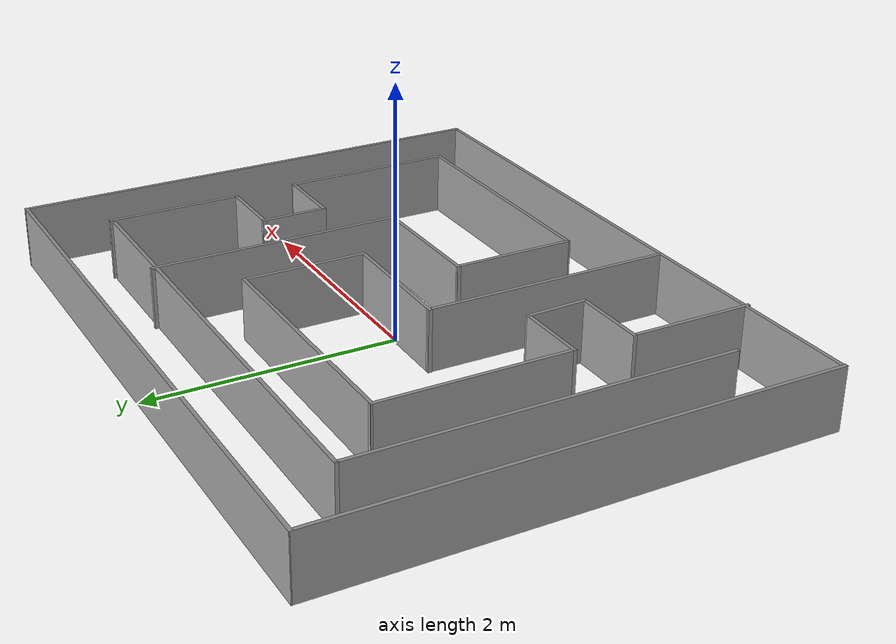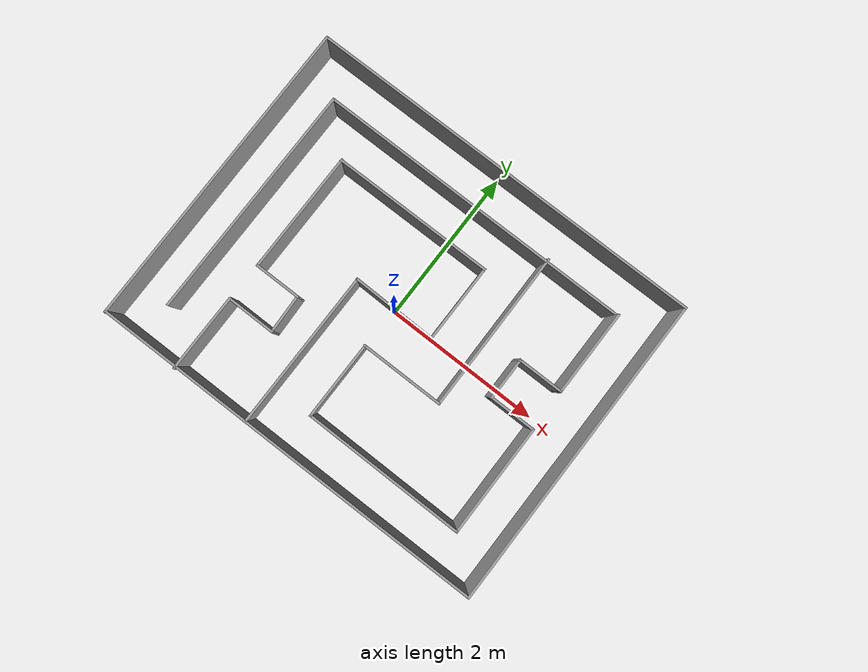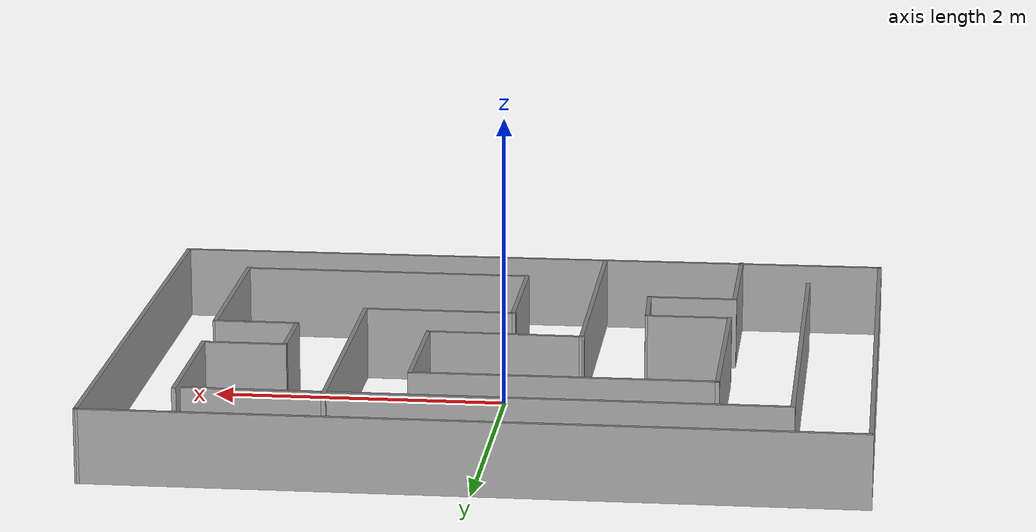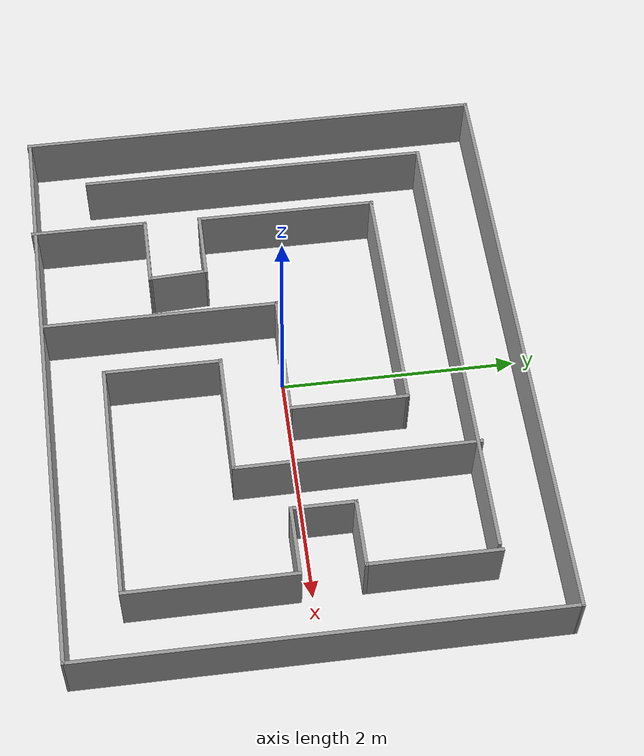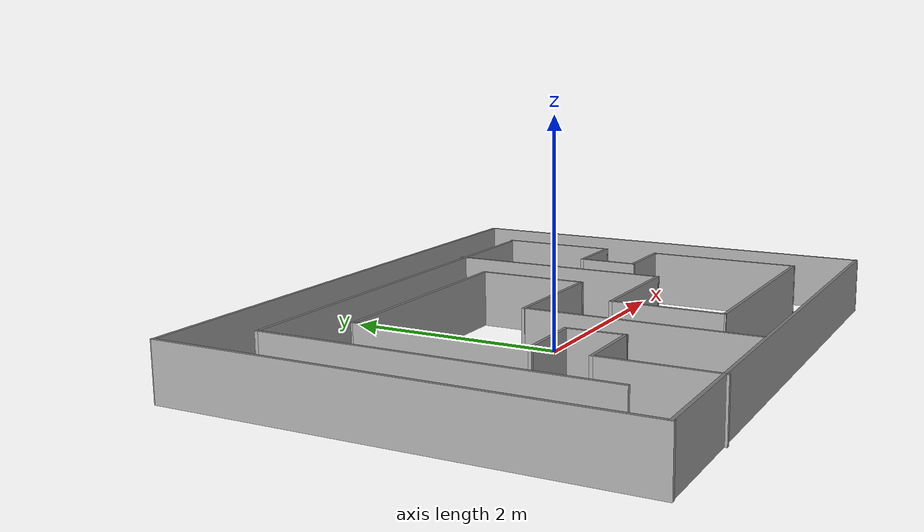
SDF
<?xml version='1.0'?>
<sdf version='1.7'>
  <model name='rk_square_v2'>
    <pose>0.007133 -0.001485 0 0 -0 0</pose>
    <link name='Wall_0'>
      <collision name='Wall_0_Collision'>
        <geometry>
          <box>
            <size>4.01302 0.03 0.5</size>
          </box>
        </geometry>
        <pose>0 0 0.25 0 -0 0</pose>
      </collision>
      <visual name='Wall_0_Visual'>
        <pose>0 0 0.25 0 -0 0</pose>
        <geometry>
          <box>
            <size>4.01302 0.03 0.5</size>
          </box>
        </geometry>
        <material>
          <script>
            <uri>file://media/materials/scripts/gazebo.material</uri>
            <name>Gazebo/Grey</name>
          </script>
          <ambient>1 1 1 1</ambient>
        </material>
        <meta>
          <layer>0</layer>
        </meta>
      </visual>
      <pose>-2.53339 -0.004576 0 0 -0 1.57406</pose>
    </link>
    <link name='Wall_10'>
      <collision name='Wall_10_Collision'>
        <geometry>
          <box>
            <size>4 0.03 0.5</size>
          </box>
        </geometry>
        <pose>0 0 0.25 0 -0 0</pose>
      </collision>
      <visual name='Wall_10_Visual'>
        <pose>0 0 0.25 0 -0 0</pose>
        <geometry>
          <box>
            <size>4 0.03 0.5</size>
          </box>
        </geometry>
        <material>
          <script>
            <uri>file://media/materials/scripts/gazebo.material</uri>
            <name>Gazebo/Grey</name>
          </script>
          <ambient>1 1 1 1</ambient>
        </material>
        <meta>
          <layer>0</layer>
        </meta>
      </visual>
      <pose>-0.043133 1.46849 0 0 -0 0</pose>
    </link>
    <link name='Wall_12'>
      <collision name='Wall_12_Collision'>
        <geometry>
          <box>
            <size>1.005 0.03 0.5</size>
          </box>
        </geometry>
        <pose>0 0 0.25 0 -0 0</pose>
      </collision>
      <visual name='Wall_12_Visual'>
        <pose>0 0 0.25 0 -0 0</pose>
        <geometry>
          <box>
            <size>1.005 0.03 0.5</size>
          </box>
        </geometry>
        <material>
          <script>
            <uri>file://media/materials/scripts/gazebo.material</uri>
            <name>Gazebo/Grey</name>
          </script>
          <ambient>1 1 1 1</ambient>
        </material>
        <meta>
          <layer>0</layer>
        </meta>
      </visual>
      <pose>-1.52613 -1.51702 0 0 -0 -1.5708</pose>
    </link>
    <link name='Wall_14'>
      <collision name='Wall_14_Collision'>
        <geometry>
          <box>
            <size>0.63 0.03 0.5</size>
          </box>
        </geometry>
        <pose>0 0 0.25 0 -0 0</pose>
      </collision>
      <visual name='Wall_14_Visual'>
        <pose>0 0 0.25 0 -0 0</pose>
        <geometry>
          <box>
            <size>0.63 0.03 0.5</size>
          </box>
        </geometry>
        <material>
          <script>
            <uri>file://media/materials/scripts/gazebo.material</uri>
            <name>Gazebo/Grey</name>
          </script>
          <ambient>1 1 1 1</ambient>
        </material>
        <meta>
          <layer>0</layer>
        </meta>
      </visual>
      <pose>-1.22613 -1.02951 0 0 -0 0</pose>
    </link>
    <link name='Wall_2'>
      <collision name='Wall_2_Collision'>
        <geometry>
          <box>
            <size>5.10976 0.03 0.5</size>
          </box>
        </geometry>
        <pose>0 0 0.25 0 -0 0</pose>
      </collision>
      <visual name='Wall_2_Visual'>
        <pose>0 0 0.25 0 -0 0</pose>
        <geometry>
          <box>
            <size>5.10976 0.03 0.5</size>
          </box>
        </geometry>
        <material>
          <script>
            <uri>file://media/materials/scripts/gazebo.material</uri>
            <name>Gazebo/Grey</name>
          </script>
          <ambient>1 1 1 1</ambient>
        </material>
        <meta>
          <layer>0</layer>
        </meta>
      </visual>
      <pose>-1e-05 1.99948 0 0 -0 0.001969</pose>
    </link>
    <link name='Wall_21'>
      <collision name='Wall_21_Collision'>
        <geometry>
          <box>
            <size>0.6 0.03 0.5</size>
          </box>
        </geometry>
        <pose>0 0 0.25 0 -0 0</pose>
      </collision>
      <visual name='Wall_21_Visual'>
        <pose>0 0 0.25 0 -0 0</pose>
        <geometry>
          <box>
            <size>0.6 0.03 0.5</size>
          </box>
        </geometry>
        <material>
          <script>
            <uri>file://media/materials/scripts/gazebo.material</uri>
            <name>Gazebo/Grey</name>
          </script>
          <ambient>1 1 1 1</ambient>
        </material>
        <meta>
          <layer>0</layer>
        </meta>
      </visual>
      <pose>-1.23097 -0.550446 0 0 -0 -0.000241</pose>
    </link>
    <link name='Wall_23'>
      <collision name='Wall_23_Collision'>
        <geometry>
          <box>
            <size>1.55255 0.03 0.5</size>
          </box>
        </geometry>
        <pose>0 0 0.25 0 -0 0</pose>
      </collision>
      <visual name='Wall_23_Visual'>
        <pose>0 0 0.25 0 -0 0</pose>
        <geometry>
          <box>
            <size>1.55255 0.03 0.5</size>
          </box>
        </geometry>
        <material>
          <script>
            <uri>file://media/materials/scripts/gazebo.material</uri>
            <name>Gazebo/Grey</name>
          </script>
          <ambient>1 1 1 1</ambient>
        </material>
        <meta>
          <layer>0</layer>
        </meta>
      </visual>
      <pose>-1.51597 0.210862 0 0 -0 1.57101</pose>
    </link>
    <link name='Wall_25'>
      <collision name='Wall_25_Collision'>
        <geometry>
          <box>
            <size>2.06053 0.03 0.5</size>
          </box>
        </geometry>
        <pose>0 0 0.25 0 -0 0</pose>
      </collision>
      <visual name='Wall_25_Visual'>
        <pose>0 0 0.25 0 -0 0</pose>
        <geometry>
          <box>
            <size>2.06053 0.03 0.5</size>
          </box>
        </geometry>
        <material>
          <script>
            <uri>file://media/materials/scripts/gazebo.material</uri>
            <name>Gazebo/Grey</name>
          </script>
          <ambient>1 1 1 1</ambient>
        </material>
        <meta>
          <layer>0</layer>
        </meta>
      </visual>
      <pose>-0.50087 0.970132 0 0 -0 0.002318</pose>
    </link>
    <link name='Wall_27'>
      <collision name='Wall_27_Collision'>
        <geometry>
          <box>
            <size>1 0.03 0.5</size>
          </box>
        </geometry>
        <pose>0 0 0.25 0 -0 0</pose>
      </collision>
      <visual name='Wall_27_Visual'>
        <pose>0 0 0.25 0 -0 0</pose>
        <geometry>
          <box>
            <size>1 0.03 0.5</size>
          </box>
        </geometry>
        <material>
          <script>
            <uri>file://media/materials/scripts/gazebo.material</uri>
            <name>Gazebo/Grey</name>
          </script>
          <ambient>1 1 1 1</ambient>
        </material>
        <meta>
          <layer>0</layer>
        </meta>
      </visual>
      <pose>0.51463 0.483324 0 0 -0 -1.57031</pose>
    </link>
    <link name='Wall_29'>
      <collision name='Wall_29_Collision'>
        <geometry>
          <box>
            <size>1.08735 0.03 0.5</size>
          </box>
        </geometry>
        <pose>0 0 0.25 0 -0 0</pose>
      </collision>
      <visual name='Wall_29_Visual'>
        <pose>0 0 0.25 0 -0 0</pose>
        <geometry>
          <box>
            <size>1.08735 0.03 0.5</size>
          </box>
        </geometry>
        <material>
          <script>
            <uri>file://media/materials/scripts/gazebo.material</uri>
            <name>Gazebo/Grey</name>
          </script>
          <ambient>1 1 1 1</ambient>
        </material>
        <meta>
          <layer>0</layer>
        </meta>
      </visual>
      <pose>-0.013754 0.005943 0 0 -0 3.12749</pose>
    </link>
    <link name='Wall_31'>
      <collision name='Wall_31_Collision'>
        <geometry>
          <box>
            <size>2 0.03 0.5</size>
          </box>
        </geometry>
        <pose>0 0 0.25 0 -0 0</pose>
      </collision>
      <visual name='Wall_31_Visual'>
        <pose>0 0 0.25 0 -0 0</pose>
        <geometry>
          <box>
            <size>2 0.03 0.5</size>
          </box>
        </geometry>
        <material>
          <script>
            <uri>file://media/materials/scripts/gazebo.material</uri>
            <name>Gazebo/Grey</name>
          </script>
          <ambient>1 1 1 1</ambient>
        </material>
        <meta>
          <layer>0</layer>
        </meta>
      </visual>
      <pose>-0.537403 -0.971599 0 0 -0 -1.5708</pose>
    </link>
    <link name='Wall_33'>
      <collision name='Wall_33_Collision'>
        <geometry>
          <box>
            <size>2.04475 0.03 0.5</size>
          </box>
        </geometry>
        <pose>0 0 0.25 0 -0 0</pose>
      </collision>
      <visual name='Wall_33_Visual'>
        <pose>0 0 0.25 0 -0 0</pose>
        <geometry>
          <box>
            <size>2.04475 0.03 0.5</size>
          </box>
        </geometry>
        <material>
          <script>
            <uri>file://media/materials/scripts/gazebo.material</uri>
            <name>Gazebo/Grey</name>
          </script>
          <ambient>1 1 1 1</ambient>
        </material>
        <meta>
          <layer>0</layer>
        </meta>
      </visual>
      <pose>1.01684 0.489112 0 0 -0 -1.56586</pose>
    </link>
    <link name='Wall_35'>
      <collision name='Wall_35_Collision'>
        <geometry>
          <box>
            <size>1.06461 0.03 0.5</size>
          </box>
        </geometry>
        <pose>0 0 0.25 0 -0 0</pose>
      </collision>
      <visual name='Wall_35_Visual'>
        <pose>0 0 0.25 0 -0 0</pose>
        <geometry>
          <box>
            <size>1.06461 0.03 0.5</size>
          </box>
        </geometry>
        <material>
          <script>
            <uri>file://media/materials/scripts/gazebo.material</uri>
            <name>Gazebo/Grey</name>
          </script>
          <ambient>1 1 1 1</ambient>
        </material>
        <meta>
          <layer>0</layer>
        </meta>
      </visual>
      <pose>0.499537 -0.518388 0 0 -0 -3.14135</pose>
    </link>
    <link name='Wall_37'>
      <collision name='Wall_37_Collision'>
        <geometry>
          <box>
            <size>1 0.03 0.5</size>
          </box>
        </geometry>
        <pose>0 0 0.25 0 -0 0</pose>
      </collision>
      <visual name='Wall_37_Visual'>
        <pose>0 0 0.25 0 -0 0</pose>
        <geometry>
          <box>
            <size>1 0.03 0.5</size>
          </box>
        </geometry>
        <material>
          <script>
            <uri>file://media/materials/scripts/gazebo.material</uri>
            <name>Gazebo/Grey</name>
          </script>
          <ambient>1 1 1 1</ambient>
        </material>
        <meta>
          <layer>0</layer>
        </meta>
      </visual>
      <pose>-0.012963 -1.00351 0 0 -0 -1.57115</pose>
    </link>
    <link name='Wall_39'>
      <collision name='Wall_39_Collision'>
        <geometry>
          <box>
            <size>2.05149 0.03 0.5</size>
          </box>
        </geometry>
        <pose>0 0 0.25 0 -0 0</pose>
      </collision>
      <visual name='Wall_39_Visual'>
        <pose>0 0 0.25 0 -0 0</pose>
        <geometry>
          <box>
            <size>2.05149 0.03 0.5</size>
          </box>
        </geometry>
        <material>
          <script>
            <uri>file://media/materials/scripts/gazebo.material</uri>
            <name>Gazebo/Grey</name>
          </script>
          <ambient>1 1 1 1</ambient>
        </material>
        <meta>
          <layer>0</layer>
        </meta>
      </visual>
      <pose>0.997609 -1.491 0 0 -0 -0.002459</pose>
    </link>
    <link name='Wall_4'>
      <collision name='Wall_4_Collision'>
        <geometry>
          <box>
            <size>4 0.03 0.5</size>
          </box>
        </geometry>
        <pose>0 0 0.25 0 -0 0</pose>
      </collision>
      <visual name='Wall_4_Visual'>
        <pose>0 0 0.25 0 -0 0</pose>
        <geometry>
          <box>
            <size>4 0.03 0.5</size>
          </box>
        </geometry>
        <material>
          <script>
            <uri>file://media/materials/scripts/gazebo.material</uri>
            <name>Gazebo/Grey</name>
          </script>
          <ambient>1 1 1 1</ambient>
        </material>
        <meta>
          <layer>0</layer>
        </meta>
      </visual>
      <pose>2.53987 0.019485 0 0 -0 -1.5708</pose>
    </link>
    <link name='Wall_41'>
      <collision name='Wall_41_Collision'>
        <geometry>
          <box>
            <size>1.41501 0.03 0.5</size>
          </box>
        </geometry>
        <pose>0 0 0.25 0 -0 0</pose>
      </collision>
      <visual name='Wall_41_Visual'>
        <pose>0 0 0.25 0 -0 0</pose>
        <geometry>
          <box>
            <size>1.41501 0.03 0.5</size>
          </box>
        </geometry>
        <material>
          <script>
            <uri>file://media/materials/scripts/gazebo.material</uri>
            <name>Gazebo/Grey</name>
          </script>
          <ambient>1 1 1 1</ambient>
        </material>
        <meta>
          <layer>0</layer>
        </meta>
      </visual>
      <pose>2.01302 -0.800982 0 0 -0 1.57355</pose>
    </link>
    <link name='Wall_43'>
      <collision name='Wall_43_Collision'>
        <geometry>
          <box>
            <size>0.6 0.03 0.5</size>
          </box>
        </geometry>
        <pose>0 0 0.25 0 -0 0</pose>
      </collision>
      <visual name='Wall_43_Visual'>
        <pose>0 0 0.25 0 -0 0</pose>
        <geometry>
          <box>
            <size>0.6 0.03 0.5</size>
          </box>
        </geometry>
        <material>
          <script>
            <uri>file://media/materials/scripts/gazebo.material</uri>
            <name>Gazebo/Grey</name>
          </script>
          <ambient>1 1 1 1</ambient>
        </material>
        <meta>
          <layer>0</layer>
        </meta>
      </visual>
      <pose>1.72599 -0.108496 0 0 -0 -3.14153</pose>
    </link>
    <link name='Wall_45'>
      <collision name='Wall_45_Collision'>
        <geometry>
          <box>
            <size>0.55 0.03 0.5</size>
          </box>
        </geometry>
        <pose>0 0 0.25 0 -0 0</pose>
      </collision>
      <visual name='Wall_45_Visual'>
        <pose>0 0 0.25 0 -0 0</pose>
        <geometry>
          <box>
            <size>0.55 0.03 0.5</size>
          </box>
        </geometry>
        <material>
          <script>
            <uri>file://media/materials/scripts/gazebo.material</uri>
            <name>Gazebo/Grey</name>
          </script>
          <ambient>1 1 1 1</ambient>
        </material>
        <meta>
          <layer>0</layer>
        </meta>
      </visual>
      <pose>1.44087 0.151485 0 0 -0 1.5708</pose>
    </link>
    <link name='Wall_47'>
      <collision name='Wall_47_Collision'>
        <geometry>
          <box>
            <size>0.588565 0.03 0.5</size>
          </box>
        </geometry>
        <pose>0 0 0.25 0 -0 0</pose>
      </collision>
      <visual name='Wall_47_Visual'>
        <pose>0 0 0.25 0 -0 0</pose>
        <geometry>
          <box>
            <size>0.588565 0.03 0.5</size>
          </box>
        </geometry>
        <material>
          <script>
            <uri>file://media/materials/scripts/gazebo.material</uri>
            <name>Gazebo/Grey</name>
          </script>
          <ambient>1 1 1 1</ambient>
        </material>
        <meta>
          <layer>0</layer>
        </meta>
      </visual>
      <pose>1.72015 0.411485 0 0 -0 0</pose>
    </link>
    <link name='Wall_49'>
      <collision name='Wall_49_Collision'>
        <geometry>
          <box>
            <size>1.1 0.03 0.5</size>
          </box>
        </geometry>
        <pose>0 0 0.25 0 -0 0</pose>
      </collision>
      <visual name='Wall_49_Visual'>
        <pose>0 0 0.25 0 -0 0</pose>
        <geometry>
          <box>
            <size>1.1 0.03 0.5</size>
          </box>
        </geometry>
        <material>
          <script>
            <uri>file://media/materials/scripts/gazebo.material</uri>
            <name>Gazebo/Grey</name>
          </script>
          <ambient>1 1 1 1</ambient>
        </material>
        <meta>
          <layer>0</layer>
        </meta>
      </visual>
      <pose>1.99943 0.946485 0 0 -0 1.5708</pose>
    </link>
    <link name='Wall_52'>
      <collision name='Wall_52_Collision'>
        <geometry>
          <box>
            <size>0.509541 0.03 0.5</size>
          </box>
        </geometry>
        <pose>0 0 0.25 0 -0 0</pose>
      </collision>
      <visual name='Wall_52_Visual'>
        <pose>0 0 0.25 0 -0 0</pose>
        <geometry>
          <box>
            <size>0.509541 0.03 0.5</size>
          </box>
        </geometry>
        <material>
          <script>
            <uri>file://media/materials/scripts/gazebo.material</uri>
            <name>Gazebo/Grey</name>
          </script>
          <ambient>1 1 1 1</ambient>
        </material>
        <meta>
          <layer>0</layer>
        </meta>
      </visual>
      <pose>-0.936133 -0.790015 0 0 -0 1.61253</pose>
    </link>
    <link name='Wall_6'>
      <collision name='Wall_6_Collision'>
        <geometry>
          <box>
            <size>5.09681 0.03 0.5</size>
          </box>
        </geometry>
        <pose>0 0 0.25 0 -0 0</pose>
      </collision>
      <visual name='Wall_6_Visual'>
        <pose>0 0 0.25 0 -0 0</pose>
        <geometry>
          <box>
            <size>5.09681 0.03 0.5</size>
          </box>
        </geometry>
        <material>
          <script>
            <uri>file://media/materials/scripts/gazebo.material</uri>
            <name>Gazebo/Grey</name>
          </script>
          <ambient>1 1 1 1</ambient>
        </material>
        <meta>
          <layer>0</layer>
        </meta>
      </visual>
      <pose>0.00649 -1.97701 0 0 -0 -3.13705</pose>
    </link>
    <link name='Wall_8'>
      <collision name='Wall_8_Collision'>
        <geometry>
          <box>
            <size>3 0.03 0.5</size>
          </box>
        </geometry>
        <pose>0 0 0.25 0 -0 0</pose>
      </collision>
      <visual name='Wall_8_Visual'>
        <pose>0 0 0.25 0 -0 0</pose>
        <geometry>
          <box>
            <size>3 0.03 0.5</size>
          </box>
        </geometry>
        <material>
          <script>
            <uri>file://media/materials/scripts/gazebo.material</uri>
            <name>Gazebo/Grey</name>
          </script>
          <ambient>1 1 1 1</ambient>
        </material>
        <meta>
          <layer>0</layer>
        </meta>
      </visual>
      <pose>-2.02813 -0.016515 0 0 -0 -1.5708</pose>
    </link>
    <static>1</static>
  </model>
</sdf>
